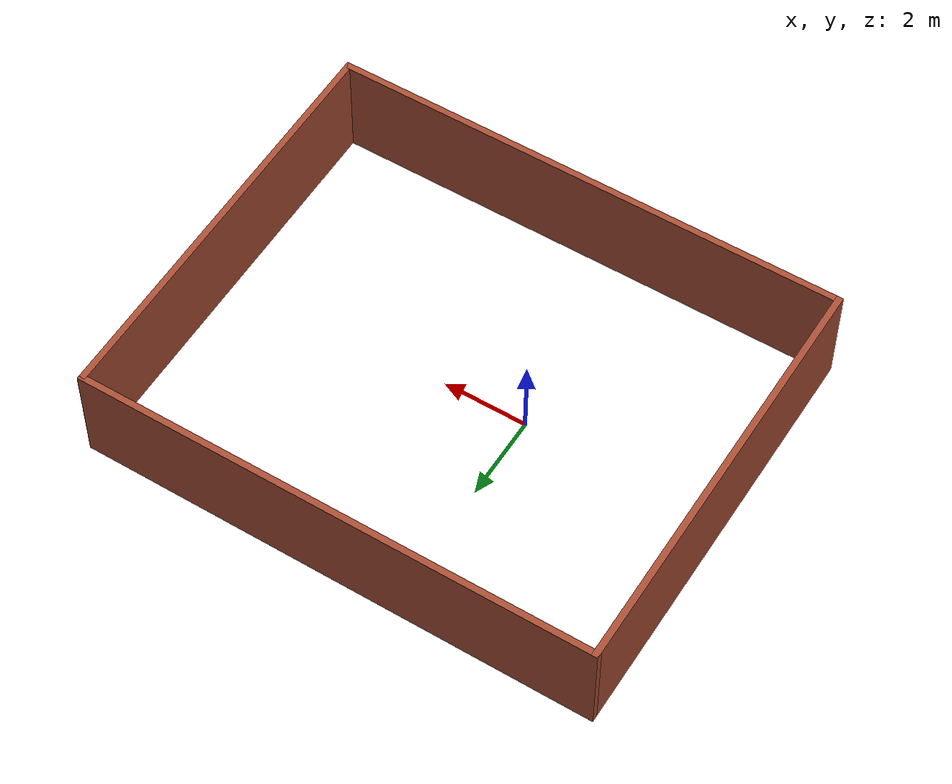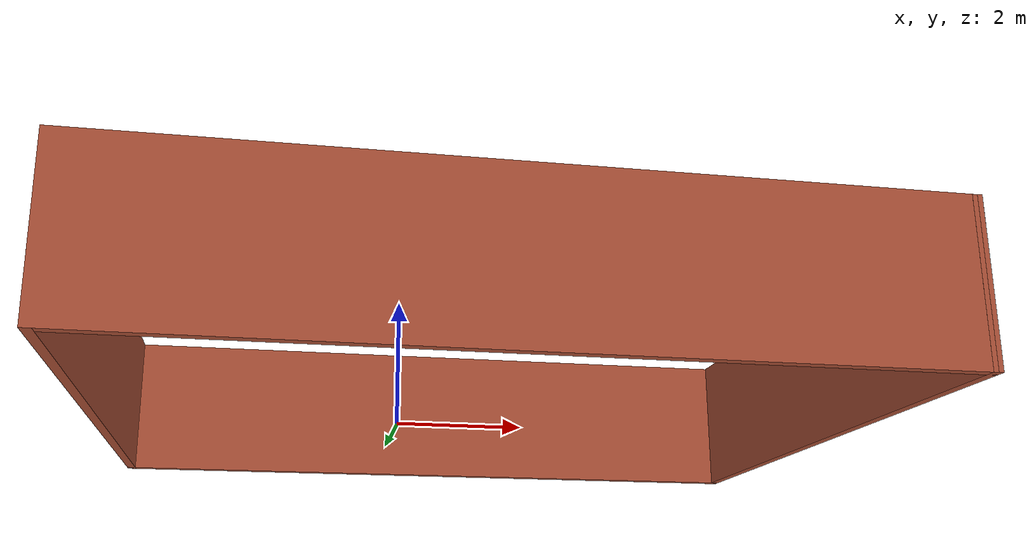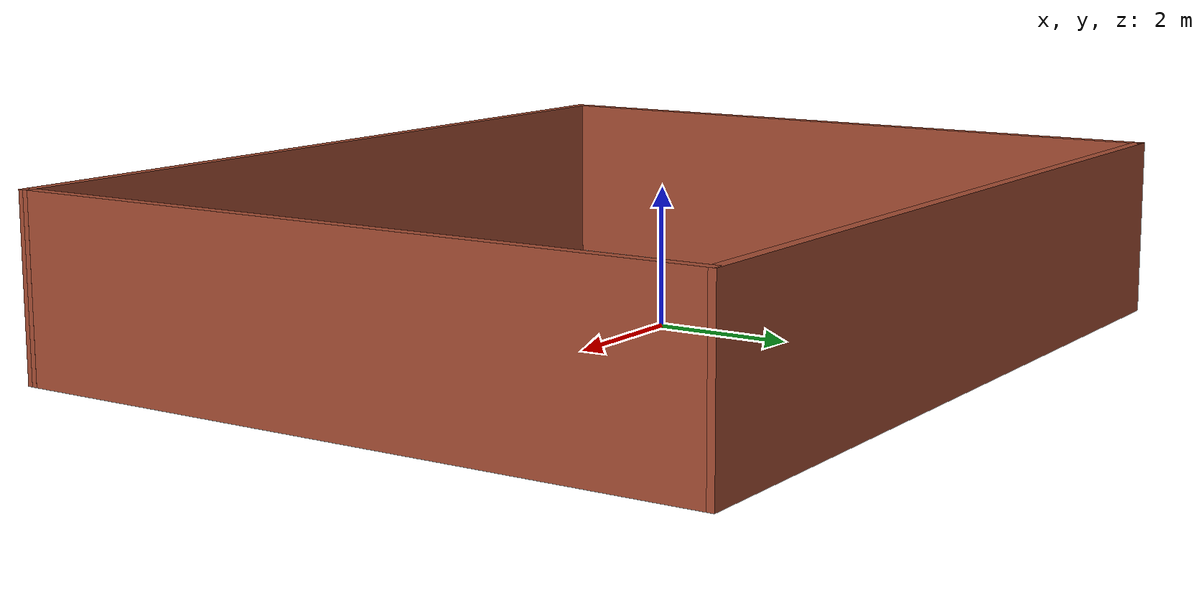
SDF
<?xml version='1.0'?>
<sdf version='1.7'>
  <model name='Walls'>
    <pose>1.35017 0.314817 0 0 -0 0</pose>
    <link name='Wall_0'>
      <collision name='Wall_0_Collision'>
        <geometry>
          <box>
            <size>12.25 0.15 2.5</size>
          </box>
        </geometry>
        <pose>0 0 1.25 0 -0 0</pose>
      </collision>
      <visual name='Wall_0_Visual'>
        <pose>0 0 1.25 0 -0 0</pose>
        <geometry>
          <box>
            <size>12.25 0.15 2.5</size>
          </box>
        </geometry>
        <material>
          <script>
            <uri>file://media/materials/scripts/gazebo.material</uri>
            <name>Gazebo/Bricks</name>
          </script>
          <ambient>0.760784 0.662745 0.627451 1</ambient>
        </material>
        <meta>
          <layer>0</layer>
        </meta>
      </visual>
      <pose>-0.000175 -4.92482 0 0 -0 0</pose>
    </link>
    <link name='Wall_1'>
      <collision name='Wall_1_Collision'>
        <geometry>
          <box>
            <size>9.97352 0.15 2.5</size>
          </box>
        </geometry>
        <pose>0 0 1.25 0 -0 0</pose>
      </collision>
      <visual name='Wall_1_Visual'>
        <pose>0 0 1.25 0 -0 0</pose>
        <geometry>
          <box>
            <size>9.97352 0.15 2.5</size>
          </box>
        </geometry>
        <material>
          <script>
            <uri>file://media/materials/scripts/gazebo.material</uri>
            <name>Gazebo/Bricks</name>
          </script>
          <ambient>0.760784 0.662745 0.627451 1</ambient>
        </material>
        <meta>
          <layer>0</layer>
        </meta>
      </visual>
      <pose>6.02582 -0.013118 0 0 -0 1.57568</pose>
    </link>
    <link name='Wall_2'>
      <collision name='Wall_2_Collision'>
        <geometry>
          <box>
            <size>12.202 0.15 2.5</size>
          </box>
        </geometry>
        <pose>0 0 1.25 0 -0 0</pose>
      </collision>
      <visual name='Wall_2_Visual'>
        <pose>0 0 1.25 0 -0 0</pose>
        <geometry>
          <box>
            <size>12.202 0.15 2.5</size>
          </box>
        </geometry>
        <material>
          <script>
            <uri>file://media/materials/scripts/gazebo.material</uri>
            <name>Gazebo/Bricks</name>
          </script>
          <ambient>0.760784 0.662745 0.627451 1</ambient>
        </material>
        <meta>
          <layer>0</layer>
        </meta>
      </visual>
      <pose>-0.024178 4.92518 0 0 -0 3.14159</pose>
    </link>
    <link name='Wall_3'>
      <collision name='Wall_3_Collision'>
        <geometry>
          <box>
            <size>10 0.15 2.5</size>
          </box>
        </geometry>
        <pose>0 0 1.25 0 -0 0</pose>
      </collision>
      <visual name='Wall_3_Visual'>
        <pose>0 0 1.25 0 -0 0</pose>
        <geometry>
          <box>
            <size>10 0.15 2.5</size>
          </box>
        </geometry>
        <material>
          <script>
            <uri>file://media/materials/scripts/gazebo.material</uri>
            <name>Gazebo/Bricks</name>
          </script>
          <ambient>0.760784 0.662745 0.627451 1</ambient>
        </material>
        <meta>
          <layer>0</layer>
        </meta>
      </visual>
      <pose>-6.05018 0.000183 0 0 -0 -1.5708</pose>
    </link>
    <static>1</static>
  </model>
</sdf>
